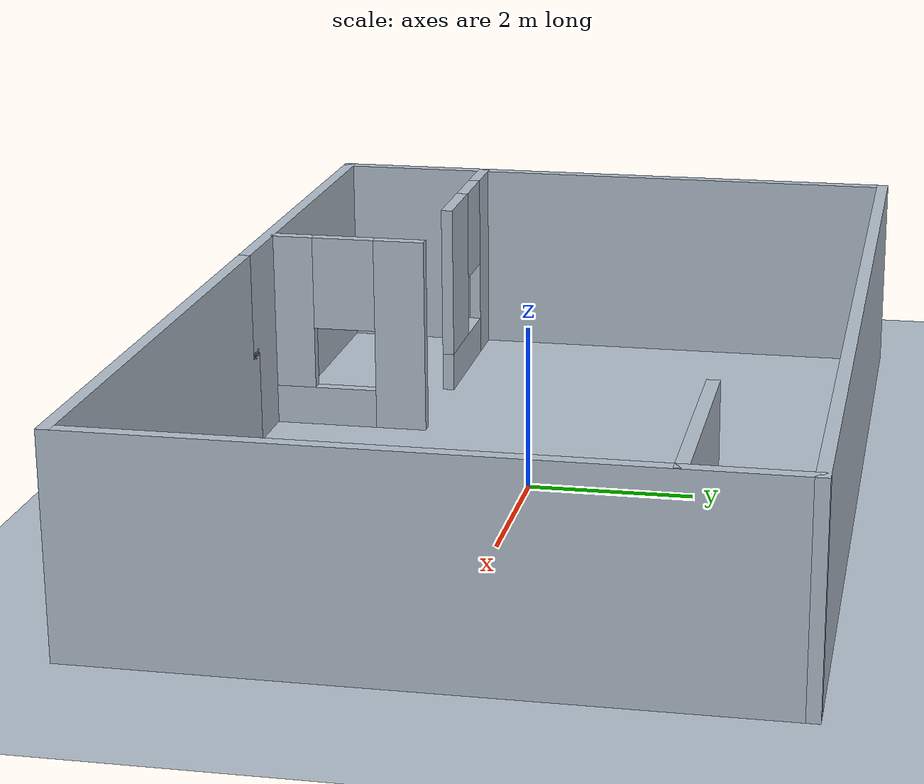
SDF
<sdf version="1.7">
 <world name="default">
  <light name="sun" type="directional">
   <pose>0 0 10 0 -0 0</pose>
   <diffuse>0.8 0.8 0.8 1</diffuse>
   <specular>0.2 0.2 0.2 1</specular>
   <attenuation>
    <range>1000</range>
    <constant>0.9</constant>
    <linear>0.01</linear>
    <quadratic>0.001</quadratic>
   </attenuation>
   <direction>-0.5 0.1 -0.9</direction>
   <spot><inner_angle>0</inner_angle><outer_angle>0</outer_angle><falloff>0</falloff></spot>
  </light>
  <model name="ground_plane">
   <static>1</static>
   <link name="link">
    <collision name="collision">
     <geometry><plane><normal>0 0 1</normal><size>100 100</size></plane></geometry>
     <surface><friction><ode><mu>100</mu><mu2>50</mu2></ode></friction></surface>
    </collision>
    <visual name="visual">
     <cast_shadows>0</cast_shadows>
     <geometry><plane><normal>0 0 1</normal><size>100 100</size></plane></geometry>
     <material>
      <ambient>0.45 0.50 0.55 1</ambient>
      <diffuse>0.70 0.75 0.80 1</diffuse>
      <specular>0.08 0.08 0.08 1</specular>
     </material>
    </visual>
   </link>
  </model>
  <gravity>0 0 -9.8</gravity>
  <magnetic_field>6e-06 2.3e-05 -4.2e-05</magnetic_field>
  <atmosphere type="adiabatic"/>
  <physics type="ode">
   <max_step_size>0.001</max_step_size>
   <real_time_factor>1</real_time_factor>
   <real_time_update_rate>1000</real_time_update_rate>
  </physics>
  <scene><ambient>0.4 0.4 0.4 1</ambient><background>0.7 0.7 0.7 1</background><shadows>1</shadows></scene>
  <audio><device>default</device></audio>
  <spherical_coordinates>
   <surface_model>EARTH_WGS84</surface_model>
   <latitude_deg>0</latitude_deg>
   <longitude_deg>0</longitude_deg>
   <elevation>0</elevation>
   <heading_deg>0</heading_deg>
  </spherical_coordinates>
  <model name="maze">
   <pose>-0.073894 0.067598 0 0 -0 0</pose>
   <link name="Wall_0">
    <collision name="Wall_0_Collision">
     <geometry><box><size>7 0.15 2.5</size></box></geometry>
     <pose>0 0 1.25 0 -0 0</pose>
    </collision>
    <visual name="Wall_0_Visual">
     <pose>0 0 1.25 0 -0 0</pose>
     <geometry><box><size>7 0.15 2.5</size></box></geometry>
     <material>
      <ambient>0.45 0.50 0.55 1</ambient>
      <diffuse>0.70 0.75 0.80 1</diffuse>
      <specular>0.08 0.08 0.08 1</specular>
     </material>
     <meta><layer>0</layer></meta>
    </visual>
    <pose>2.5 -3.8 0 0 -0 0</pose>
   </link>
   <link name="Wall_1">
    <collision name="Wall_1_Collision">
     <geometry><box><size>7.75 0.15 2.5</size></box></geometry>
     <pose>0 0 1.25 0 -0 0</pose>
    </collision>
    <visual name="Wall_1_Visual">
     <pose>0 0 1.25 0 -0 0</pose>
     <geometry><box><size>7.75 0.15 2.5</size></box></geometry>
     <material>
      <ambient>0.45 0.50 0.55 1</ambient>
      <diffuse>0.70 0.75 0.80 1</diffuse>
      <specular>0.08 0.08 0.08 1</specular>
     </material>
     <meta><layer>0</layer></meta>
    </visual>
    <pose>5.925 0 0 0 -0 1.5708</pose>
   </link>
   <link name="Wall_11">
    <pose>-1.81649 -2.75798 0 0 -0 -1.5708</pose>
    <visual name="Wall_11_Visual_0">
     <pose>-0.673175 0 1.25 0 -0 0</pose>
     <geometry><box><size>0.65365 0.15 2.5</size></box></geometry>
     <material>
      <ambient>0.45 0.50 0.55 1</ambient>
      <diffuse>0.70 0.75 0.80 1</diffuse>
      <specular>0.08 0.08 0.08 1</specular>
     </material>
     <meta><layer>0</layer></meta>
    </visual>
    <collision name="Wall_11_Collision_0">
     <geometry><box><size>0.65365 0.15 2.5</size></box></geometry>
     <pose>-0.673175 0 1.25 0 -0 0</pose>
    </collision>
    <visual name="Wall_11_Visual_1">
     <pose>0.326825 0 0.25 0 -0 0</pose>
     <geometry><box><size>1.34635 0.15 0.5</size></box></geometry>
     <material>
      <ambient>0.45 0.50 0.55 1</ambient>
      <diffuse>0.70 0.75 0.80 1</diffuse>
      <specular>0.08 0.08 0.08 1</specular>
     </material>
     <meta><layer>0</layer></meta>
    </visual>
    <collision name="Wall_11_Collision_1">
     <geometry><box><size>1.34635 0.15 0.5</size></box></geometry>
     <pose>0.326825 0 0.25 0 -0 0</pose>
    </collision>
    <visual name="Wall_11_Visual_2">
     <pose>0.726825 0 1.5 0 -0 0</pose>
     <geometry><box><size>0.54635 0.15 2</size></box></geometry>
     <material>
      <ambient>0.45 0.50 0.55 1</ambient>
      <diffuse>0.70 0.75 0.80 1</diffuse>
      <specular>0.08 0.08 0.08 1</specular>
     </material>
     <meta><layer>0</layer></meta>
    </visual>
    <collision name="Wall_11_Collision_2">
     <geometry><box><size>0.54635 0.15 2</size></box></geometry>
     <pose>0.726825 0 1.5 0 -0 0</pose>
    </collision>
    <visual name="Wall_11_Visual_3">
     <pose>0.05365 0 1.9 0 -0 0</pose>
     <geometry><box><size>0.8 0.15 1.2</size></box></geometry>
     <material>
      <ambient>0.45 0.50 0.55 1</ambient>
      <diffuse>0.70 0.75 0.80 1</diffuse>
      <specular>0.08 0.08 0.08 1</specular>
     </material>
     <meta><layer>0</layer></meta>
    </visual>
    <collision name="Wall_11_Collision_3">
     <geometry><box><size>0.8 0.15 1.2</size></box></geometry>
     <pose>0.05365 0 1.9 0 -0 0</pose>
    </collision>
   </link>
   <link name="Wall_13">
    <collision name="Wall_13_Collision">
     <geometry><box><size>2.75 0.15 2.5</size></box></geometry>
     <pose>0 0 1.25 0 -0 0</pose>
    </collision>
    <visual name="Wall_13_Visual">
     <pose>0 0 1.25 0 -0 0</pose>
     <geometry><box><size>2.75 0.15 2.5</size></box></geometry>
     <material>
      <ambient>0.45 0.50 0.55 1</ambient>
      <diffuse>0.70 0.75 0.80 1</diffuse>
      <specular>0.08 0.08 0.08 1</specular>
     </material>
     <meta><layer>0</layer></meta>
    </visual>
    <pose>4.60691 2.47837 0 0 -0 3.14159</pose>
   </link>
   <link name="Wall_2">
    <collision name="Wall_2_Collision">
     <geometry><box><size>12 0.15 2.5</size></box></geometry>
     <pose>0 0 1.25 0 -0 0</pose>
    </collision>
    <visual name="Wall_2_Visual">
     <pose>0 0 1.25 0 -0 0</pose>
     <geometry><box><size>12 0.15 2.5</size></box></geometry>
     <material>
      <ambient>0.45 0.50 0.55 1</ambient>
      <diffuse>0.70 0.75 0.80 1</diffuse>
      <specular>0.08 0.08 0.08 1</specular>
     </material>
     <meta><layer>0</layer></meta>
    </visual>
    <pose>-0 3.8 0 0 -0 3.14159</pose>
   </link>
   <link name="Wall_3">
    <collision name="Wall_3_Collision">
     <geometry><box><size>7.75 0.15 2.5</size></box></geometry>
     <pose>0 0 1.25 0 -0 0</pose>
    </collision>
    <visual name="Wall_3_Visual">
     <pose>0 0 1.25 0 -0 0</pose>
     <geometry><box><size>7.75 0.15 2.5</size></box></geometry>
     <material>
      <ambient>0.45 0.50 0.55 1</ambient>
      <diffuse>0.70 0.75 0.80 1</diffuse>
      <specular>0.08 0.08 0.08 1</specular>
     </material>
     <meta><layer>0</layer></meta>
    </visual>
    <pose>-5.925 0 0 0 -0 -1.5708</pose>
   </link>
   <link name="Wall_4">
    <collision name="Wall_4_Collision">
     <geometry><box><size>5.25 0.15 2.5</size></box></geometry>
     <pose>0 0 1.25 0 -0 0</pose>
    </collision>
    <visual name="Wall_4_Visual">
     <pose>0 0 1.25 0 -0 0</pose>
     <geometry><box><size>5.25 0.15 2.5</size></box></geometry>
     <material>
      <ambient>0.45 0.50 0.55 1</ambient>
      <diffuse>0.70 0.75 0.80 1</diffuse>
      <specular>0.08 0.08 0.08 1</specular>
     </material>
     <meta><layer>0</layer></meta>
    </visual>
    <pose>-3.375 -3.8 0 0 -0 0</pose>
   </link>
   <link name="Wall_9">
    <pose>-4.71479 -1.83298 0 0 -0 0</pose>
    <visual name="Wall_9_Visual_0">
     <pose>-0.896725 0 1.25 0 -0 0</pose>
     <geometry><box><size>0.70655 0.15 2.5</size></box></geometry>
     <material>
      <ambient>0.45 0.50 0.55 1</ambient>
      <diffuse>0.70 0.75 0.80 1</diffuse>
      <specular>0.08 0.08 0.08 1</specular>
     </material>
     <meta><layer>0</layer></meta>
    </visual>
    <collision name="Wall_9_Collision_0">
     <geometry><box><size>0.70655 0.15 2.5</size></box></geometry>
     <pose>-0.896725 0 1.25 0 -0 0</pose>
    </collision>
    <visual name="Wall_9_Visual_1">
     <pose>0.353275 0 0.25 0 -0 0</pose>
     <geometry><box><size>1.79345 0.15 0.5</size></box></geometry>
     <material>
      <ambient>0.45 0.50 0.55 1</ambient>
      <diffuse>0.70 0.75 0.80 1</diffuse>
      <specular>0.08 0.08 0.08 1</specular>
     </material>
     <meta><layer>0</layer></meta>
    </visual>
    <collision name="Wall_9_Collision_1">
     <geometry><box><size>1.79345 0.15 0.5</size></box></geometry>
     <pose>0.353275 0 0.25 0 -0 0</pose>
    </collision>
    <visual name="Wall_9_Visual_2">
     <pose>0.753275 0 1.5 0 -0 0</pose>
     <geometry><box><size>0.99345 0.15 2</size></box></geometry>
     <material>
      <ambient>0.45 0.50 0.55 1</ambient>
      <diffuse>0.70 0.75 0.80 1</diffuse>
      <specular>0.08 0.08 0.08 1</specular>
     </material>
     <meta><layer>0</layer></meta>
    </visual>
    <collision name="Wall_9_Collision_2">
     <geometry><box><size>0.99345 0.15 2</size></box></geometry>
     <pose>0.753275 0 1.5 0 -0 0</pose>
    </collision>
    <visual name="Wall_9_Visual_3">
     <pose>-0.14345 0 1.9 0 -0 0</pose>
     <geometry><box><size>0.8 0.15 1.2</size></box></geometry>
     <material>
      <ambient>0.45 0.50 0.55 1</ambient>
      <diffuse>0.70 0.75 0.80 1</diffuse>
      <specular>0.08 0.08 0.08 1</specular>
     </material>
     <meta><layer>0</layer></meta>
    </visual>
    <collision name="Wall_9_Collision_3">
     <geometry><box><size>0.8 0.15 1.2</size></box></geometry>
     <pose>-0.14345 0 1.9 0 -0 0</pose>
    </collision>
   </link>
   <static>1</static>
  </model>
 </world>
</sdf>
